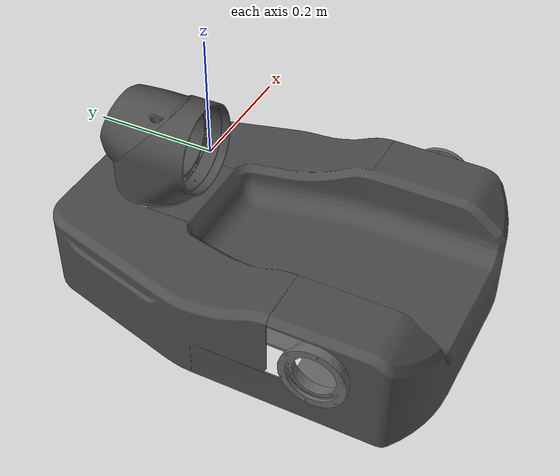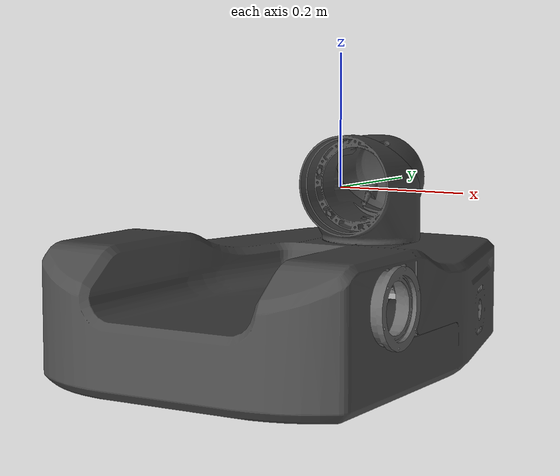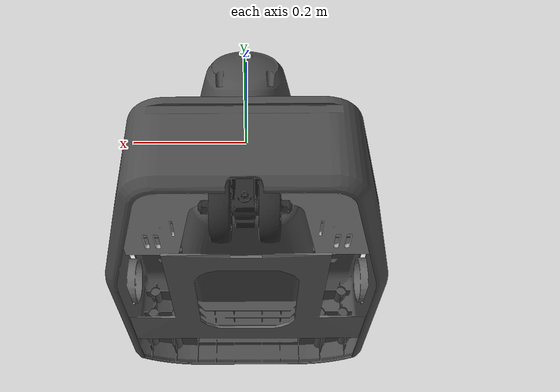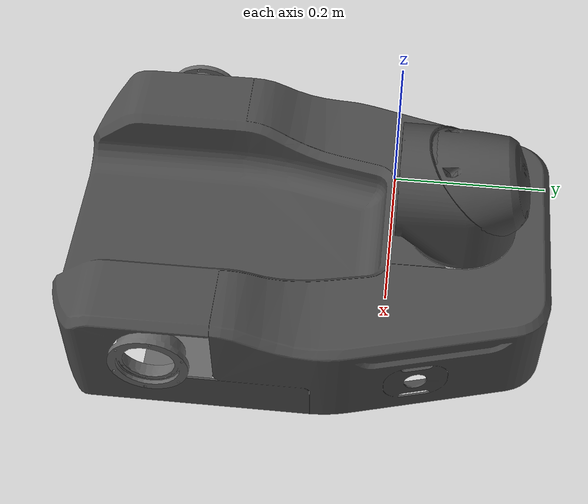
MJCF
<mujoco model="mobile_base">
  <default>
    <default class="visual">
      <geom group="2" type="mesh" contype="0" conaffinity="0"/>
    </default>
    <default class="collision">
      <geom group="3" type="mesh"/>
    </default>
  </default>
  <asset>
    <material name="103,103,103_1.001" specular="1.0" shininess="0.2" rgba="0.403922 0.403922 0.403922 1.000000"/>
    <material name="103,103,103_13.002" specular="1.0" shininess="0.2" rgba="0.403922 0.403922 0.403922 1.000000"/>
    <material name="103,103,103_13.003" specular="1.0" shininess="0.2" rgba="0.403922 0.403922 0.403922 1.000000"/>
    <material name="160,160,160.001" specular="1.0" shininess="0.2" rgba="0.627451 0.627451 0.627451 1.000000"/>
    <material name="39,39,39_1.001" specular="1.0" shininess="0.2" rgba="0.152941 0.152941 0.152941 1.000000"/>
    <material name="75,75,75.001" specular="1.0" shininess="0.2" rgba="0.294118 0.294118 0.294118 1.000000"/>
    <material name="75,75,75_1.001" specular="1.0" shininess="0.2" rgba="0.294118 0.294118 0.294118 1.000000"/>
    <material name="75,75,75_2.001" specular="1.0" shininess="0.2" rgba="0.294118 0.294118 0.294118 1.000000"/>
    <mesh file="mobile_base_0.obj"/>
    <mesh file="mobile_base_1.obj"/>
    <mesh file="mobile_base_2.obj"/>
    <mesh file="mobile_base_3.obj"/>
    <mesh file="mobile_base_4.obj"/>
    <mesh file="mobile_base_5.obj"/>
    <mesh file="mobile_base_6.obj"/>
    <mesh file="mobile_base_7.obj"/>
  </asset>
  <worldbody>
    <body name="mobile_base">
      <geom mesh="mobile_base_0" material="39,39,39_1.001" class="visual"/>
      <geom mesh="mobile_base_1" material="75,75,75_1.001" class="visual"/>
      <geom mesh="mobile_base_2" material="75,75,75.001" class="visual"/>
      <geom mesh="mobile_base_3" material="103,103,103_13.003" class="visual"/>
      <geom mesh="mobile_base_4" material="103,103,103_13.002" class="visual"/>
      <geom mesh="mobile_base_5" material="103,103,103_1.001" class="visual"/>
      <geom mesh="mobile_base_6" material="160,160,160.001" class="visual"/>
      <geom mesh="mobile_base_7" material="75,75,75_2.001" class="visual"/>
      <geom mesh="mobile_base_0" class="collision"/>
      <geom mesh="mobile_base_1" class="collision"/>
      <geom mesh="mobile_base_2" class="collision"/>
      <geom mesh="mobile_base_3" class="collision"/>
      <geom mesh="mobile_base_4" class="collision"/>
      <geom mesh="mobile_base_5" class="collision"/>
      <geom mesh="mobile_base_6" class="collision"/>
      <geom mesh="mobile_base_7" class="collision"/>
    </body>
  </worldbody>
</mujoco>
